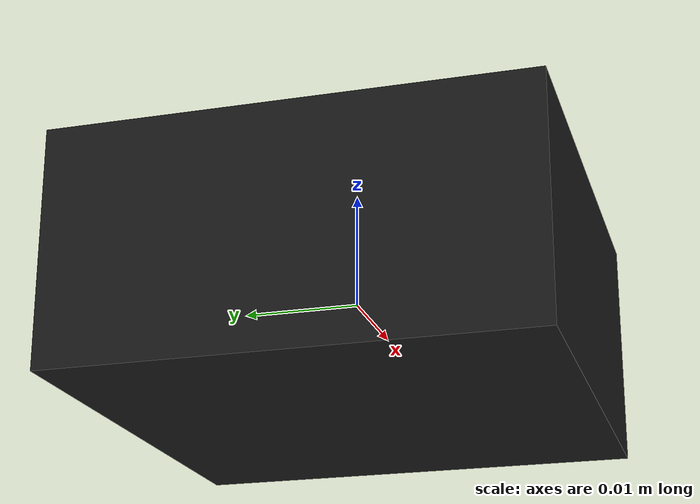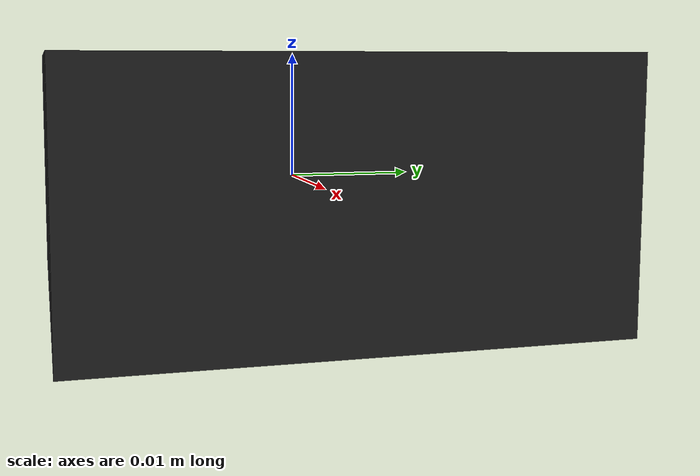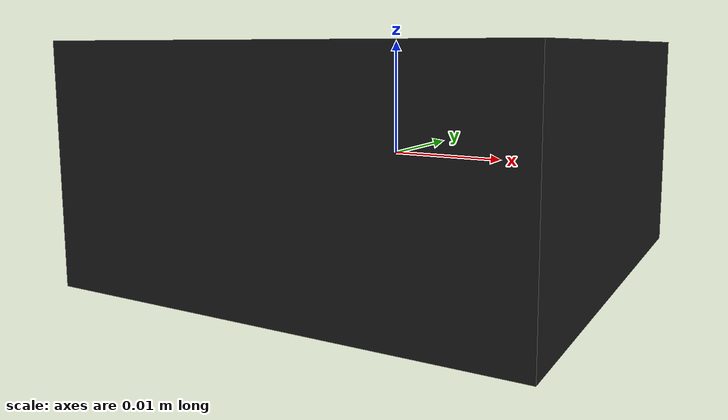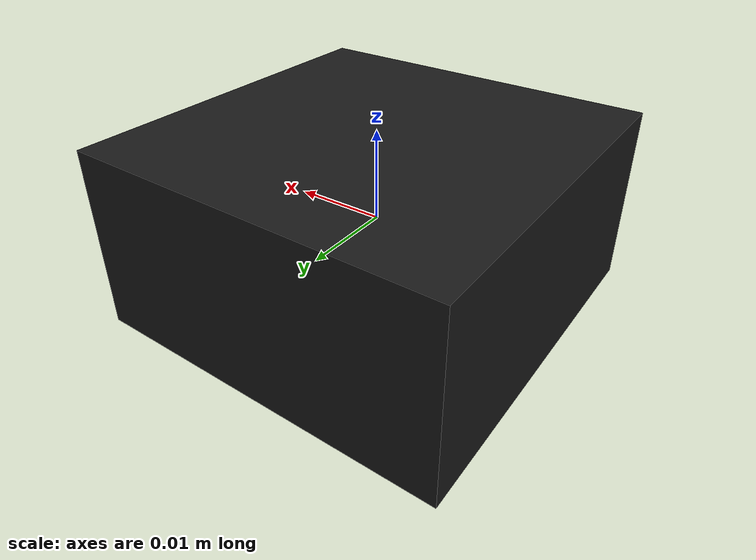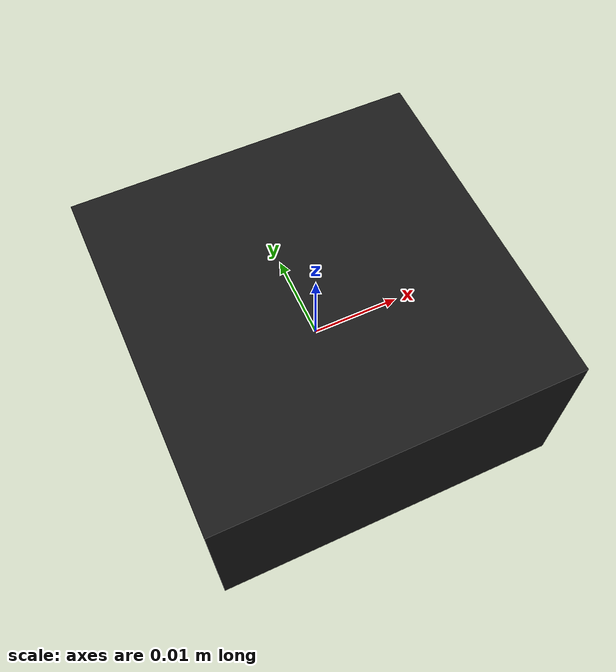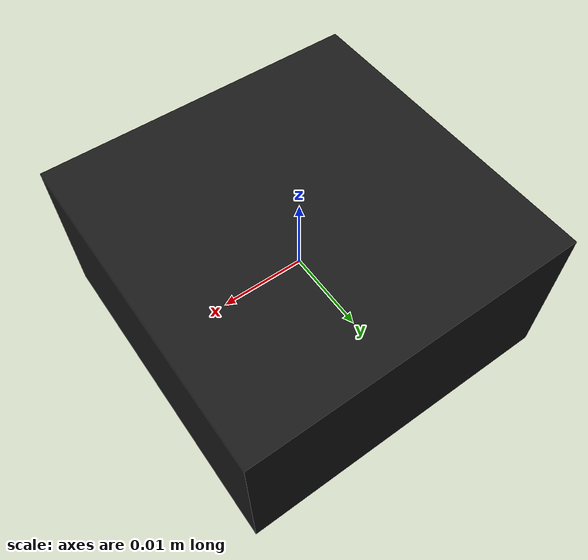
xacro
<?xml version="1.0"?>
<robot xmlns:xacro="http://www.ros.org/wiki/xacro" name="overhead_camera">

    <!-- Modelo estático: no se mueve por gravedad ni colisiones -->
    <gazebo>
        <static>true</static>
    </gazebo>

    <link name="overhead_camera_link">
        <inertial>
            <mass value="0.1"/>
            <origin xyz="0 0 0" rpy="0 0 0"/>
            <inertia ixx="1e-6" ixy="0" ixz="0"
                     iyy="1e-6" iyz="0" izz="1e-6"/>
        </inertial>
        <visual>
            <origin xyz="0 0 0" rpy="0 0 0"/>
            <geometry>
                <box size="0.04 0.04 0.02"/>
            </geometry>
            <material name="camera_body">
                <color rgba="0.1 0.1 0.1 1"/>
            </material>
        </visual>
        <collision>
            <origin xyz="0 0 0" rpy="0 0 0"/>
            <geometry>
                <box size="0.04 0.04 0.02"/>
            </geometry>
        </collision>
    </link>

    <!-- Optical frame: convención ROS (Z forward, X right, Y down)
         Necesario para cv_bridge, image_geometry, ArUco, etc. -->
    <link name="overhead_camera_optical_frame"/>

    <joint name="overhead_camera_optical_joint" type="fixed">
        <parent link="overhead_camera_link"/>
        <child link="overhead_camera_optical_frame"/>
        <origin xyz="0 0 0" rpy="-1.5707963267949 0 -1.5707963267949"/>
    </joint>

    <!-- Gazebo: sensor de cámara + plugin ROS 2 -->
    <gazebo reference="overhead_camera_link">
        <sensor type="camera" name="overhead_camera">
            <always_on>true</always_on>
            <update_rate>30.0</update_rate>
            <visualize>false</visualize>
            <camera name="overhead_cam">
                <horizontal_fov>1.3962634</horizontal_fov>
                <image>
                    <width>640</width>
                    <height>480</height>
                    <format>R8G8B8</format>
                </image>
                <clip>
                    <near>0.05</near>
                    <far>10.0</far>
                </clip>
                <noise>
                    <type>gaussian</type>
                    <mean>0.0</mean>
                    <stddev>0.007</stddev>
                </noise>
            </camera>
            <plugin name="overhead_camera_controller" filename="libgazebo_ros_camera.so">
                <ros>
                    <namespace>overhead_camera</namespace>
                    <remapping>image_raw:=image_raw</remapping>
                    <remapping>camera_info:=camera_info</remapping>
                </ros>
                <camera_name>overhead_cam</camera_name>
                <frame_name>overhead_camera_optical_frame</frame_name>
                <hack_baseline>0.0</hack_baseline>
            </plugin>
        </sensor>
        <material>Gazebo/DarkGrey</material>
    </gazebo>

</robot>
